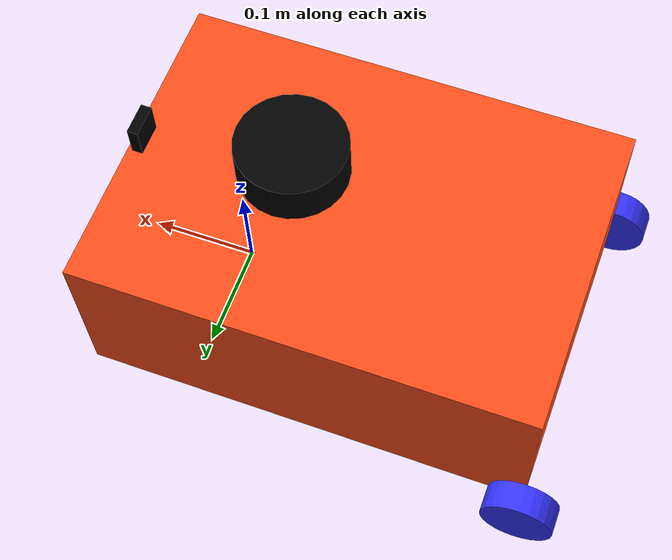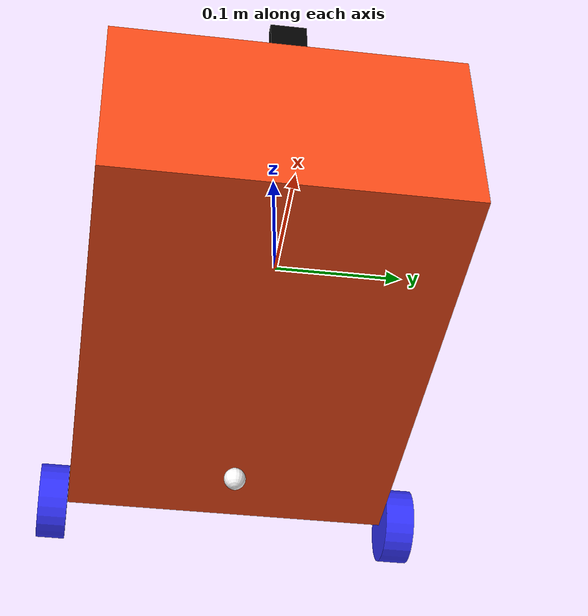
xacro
<?xml version="1.0"?>
<robot xmlns:xacro="http://www.ros.org/wiki/xacro" name="lunohod2">

    <!-- Core robot structure (chassis, wheels) -->
    <xacro:include filename="lunohod2_core.xacro"/>

    <!-- Sensors -->
    <xacro:include filename="lunohod2_lidar.xacro"/>
    <xacro:include filename="lunohod2_imu.xacro"/>
    <xacro:include filename="lunohod2_camera.xacro"/>

</robot>

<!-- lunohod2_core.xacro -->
<robot xmlns:xacro="http://www.ros.org/wiki/xacro">

    <!-- Robot physical parameters (from actual lunohod hardware) -->
    <xacro:property name="chassis_length" value="0.425"/>
    <xacro:property name="chassis_width" value="0.295"/>
    <xacro:property name="chassis_height" value="0.165"/>
    <xacro:property name="wheel_radius" value="0.034"/>
    <xacro:property name="wheel_thickness" value="0.026"/>
    <xacro:property name="wheel_offset_x" value="0.325"/>
    <xacro:property name="wheel_offset_y" value="0.161"/>
    <xacro:property name="wheel_offset_z" value="0.01"/>
    <xacro:property name="caster_wheel_radius" value="0.01"/>
    <xacro:property name="caster_wheel_offset_x" value="0.075"/>
    <xacro:property name="caster_wheel_offset_z" value="${wheel_offset_z - wheel_radius + caster_wheel_radius}"/>

    <!-- Material definitions for visualization -->
    <material name="white">
        <color rgba="1 1 1 1"/>
    </material>

    <material name="orange">
        <color rgba="1 0.3 0.1 1"/>
    </material>

    <material name="blue">
        <color rgba="0.2 0.2 1 1"/>
    </material>

    <material name="black">
        <color rgba="0 0 0 1"/>
    </material>

    <material name="red">
        <color rgba="1 0 0 1"/>
    </material>

    <!-- BASE_LINK (main robot reference frame) -->
    <link name="base_link"/>

    <!-- BASE_FOOTPRINT (ground projection for navigation) -->
    <joint name="base_footprint_joint" type="fixed">
        <parent link="base_link"/>
        <child link="base_footprint"/>
        <origin xyz="0 0 0" rpy="0 0 0"/>
    </joint>

    <link name="base_footprint"/>

    <!-- CHASSIS LINK -->
    <joint name="chassis_joint" type="fixed">
        <parent link="base_link"/>
        <child link="chassis"/>
        <origin xyz="${-wheel_offset_x} 0 ${-wheel_offset_z}" rpy="0 0 0"/>
    </joint>

    <link name="chassis">
        <visual>
            <origin xyz="${chassis_length/2} 0 ${chassis_height/2}"/>
            <geometry>
                <box size="${chassis_length} ${chassis_width} ${chassis_height}"/>
            </geometry>
            <material name="orange"/>
        </visual>
    </link>

    <!-- LEFT WHEEL -->
    <joint name="left_wheel_joint" type="continuous">
        <parent link="chassis"/>
        <child link="left_wheel"/>
        <origin xyz="0 ${wheel_offset_y} 0" rpy="-${pi/2} 0 0"/>
        <axis xyz="0 0 1"/>
    </joint>

    <link name="left_wheel">
        <visual>
            <geometry>
                <cylinder radius="${wheel_radius}" length="${wheel_thickness}"/>
            </geometry>
            <material name="blue"/>
        </visual>
    </link>

    <!-- RIGHT WHEEL -->
    <joint name="right_wheel_joint" type="continuous">
        <parent link="chassis"/>
        <child link="right_wheel"/>
        <origin xyz="0 ${-wheel_offset_y} 0" rpy="${pi/2} 0 0"/>
        <axis xyz="0 0 -1"/>
    </joint>

    <link name="right_wheel">
        <visual>
            <geometry>
                <cylinder radius="${wheel_radius}" length="${wheel_thickness}"/>
            </geometry>
            <material name="blue"/>
        </visual>
    </link>

    <!-- CASTER WHEEL (front support wheel) -->
    <joint name="caster_wheel_joint" type="fixed">
        <parent link="chassis"/>
        <child link="caster_wheel"/>
        <origin xyz="${caster_wheel_offset_x} 0 ${caster_wheel_offset_z}"/>
    </joint>

    <link name="caster_wheel">
        <visual>
            <geometry>
                <sphere radius="${caster_wheel_radius}"/>
            </geometry>
            <material name="white"/>
        </visual>
    </link>

</robot>

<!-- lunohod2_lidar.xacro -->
<robot xmlns:xacro="http://www.ros.org/wiki/xacro">

    <!-- RPLidar C1 Sensor -->
    <!-- Mounted on top-front of chassis -->

    <joint name="laser_joint" type="fixed">
        <parent link="chassis"/>
        <child link="laser_frame"/>
        <origin xyz="0.270 0 0.212" rpy="0 0 ${pi}"/>
    </joint>

    <link name="laser_frame">
        <!-- Main lidar body -->
        <visual>
            <geometry>
                <cylinder radius="0.05" length="0.04"/>
            </geometry>
            <material name="black"/>
        </visual>
        <!-- Support post -->
        <visual>
            <origin xyz="0 0 -0.05"/>
            <geometry>
                <cylinder radius="0.01" length="0.1"/>
            </geometry>
            <material name="black"/>
        </visual>
    </link>

</robot>

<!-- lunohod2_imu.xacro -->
<robot xmlns:xacro="http://www.ros.org/wiki/xacro">

    <!-- IMU Sensor (integrated with micro-ROS chassis) -->
    <!-- Position based on actual hardware location -->

    <joint name="imu_joint" type="fixed">
        <parent link="chassis"/>
        <child link="imu_link"/>
        <origin xyz="0.040 -0.02 0.065" rpy="0 0 ${pi}"/>
    </joint>

    <link name="imu_link">
        <visual>
            <origin xyz="0 0 0" rpy="0 0 0"/>
            <geometry>
                <box size="0.02 0.02 0.01"/>
            </geometry>
            <material name="red"/>
        </visual>
    </link>

</robot>

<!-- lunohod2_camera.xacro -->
<robot xmlns:xacro="http://www.ros.org/wiki/xacro">

    <!-- Camera (for teleoperation/monitoring only, not used for navigation) -->

    <joint name="camera_joint" type="fixed">
        <parent link="chassis"/>
        <child link="camera_link"/>
        <origin xyz="0.415 0 0.181" rpy="0 0 0"/>
    </joint>

    <link name="camera_link">
        <!-- Camera body -->
        <visual>
            <geometry>
                <box size="0.010 0.03 0.03"/>
            </geometry>
            <material name="black"/>
        </visual>
        <!-- Support post -->
        <visual>
            <origin xyz="0 0 -0.05"/>
            <geometry>
                <cylinder radius="0.002" length="0.1"/>
            </geometry>
            <material name="black"/>
        </visual>
    </link>

    <!-- Optical frame (standard camera coordinate system) -->
    <joint name="camera_optical_joint" type="fixed">
        <parent link="camera_link"/>
        <child link="camera_link_optical"/>
        <origin xyz="0 0 0" rpy="${-pi/2} 0 ${-pi/2}"/>
    </joint>

    <link name="camera_link_optical"/>

</robot>
